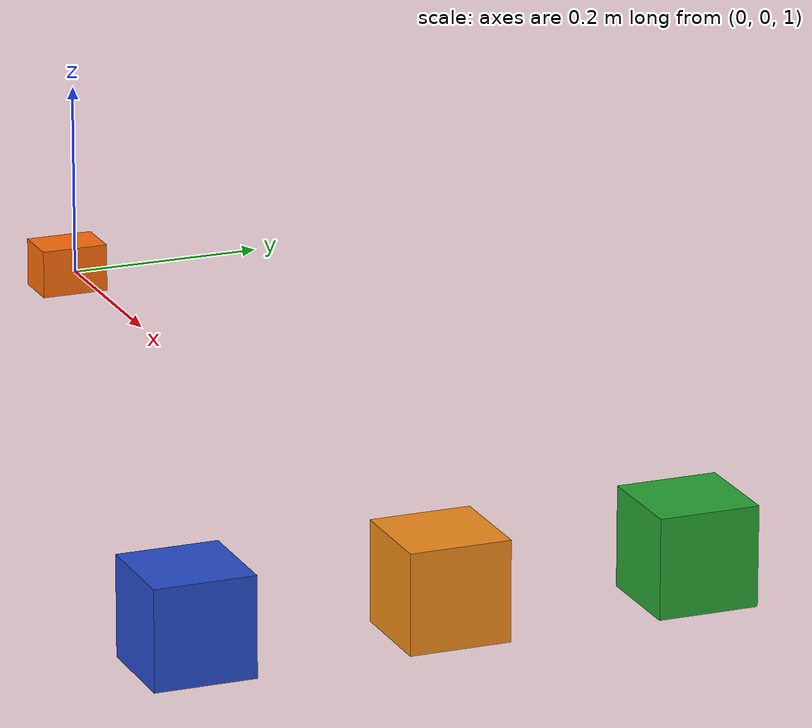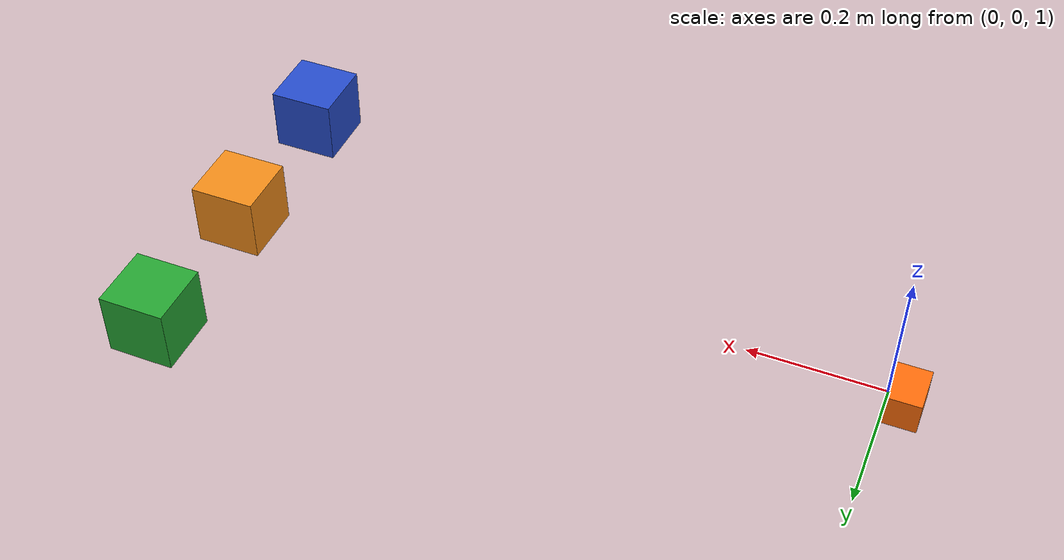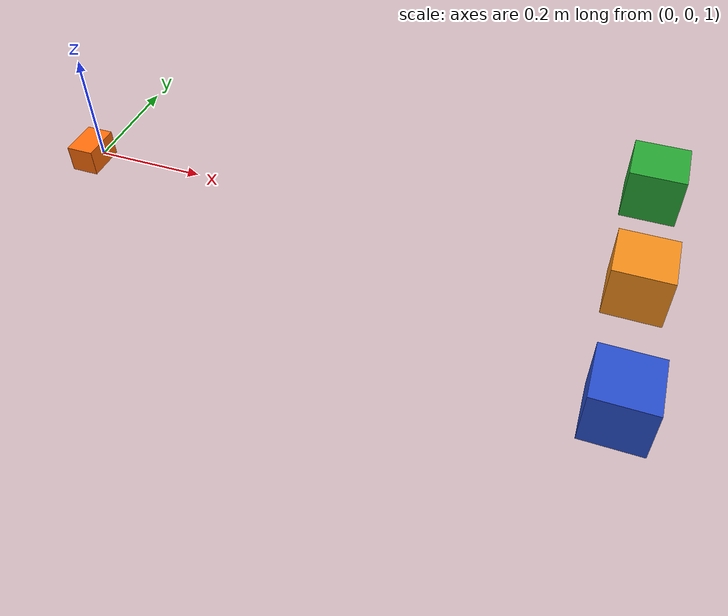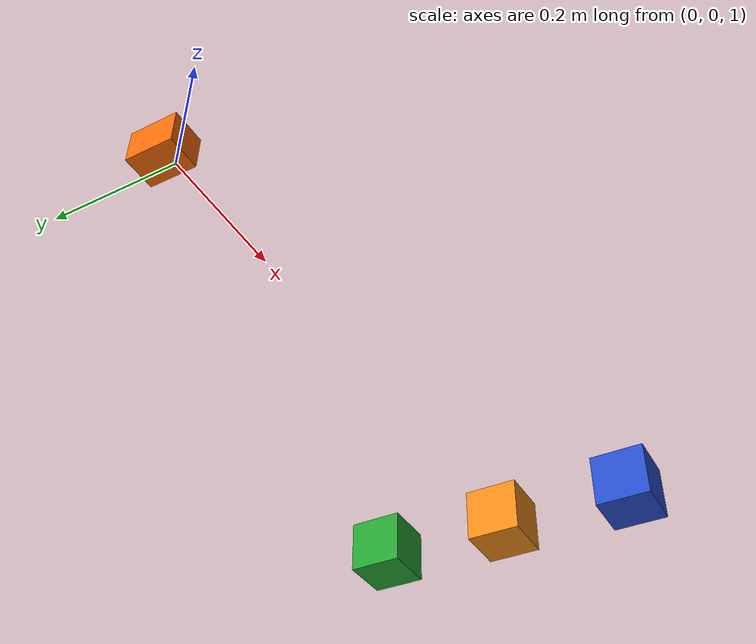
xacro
<?xml version="1.0"?>

<robot name="sensor" xmlns:xacro="http://www.ros.org/wiki/xacro">
<!-- camera -->

  <xacro:include filename="$(find sensor_sim_gazebo)/urdf/sensor.xacro"/>

<gazebo reference="sensor_link">
    <sensor type="multicamera" name="stereo_camera">
      <update_rate>30.0</update_rate>
      <camera name="left">
        <pose>0 0.035 0 0 0 0</pose>
        <horizontal_fov>1.3962634</horizontal_fov>
        <image>
          <width>800</width>
          <height>800</height>
          <format>R8G8B8</format>
        </image>
        <clip>
          <near>0.02</near>
          <far>300</far>
        </clip>
        <noise>
          <type>gaussian</type>
          <mean>0.0</mean>
          <stddev>0.007</stddev>
        </noise>
      </camera>
      <camera name="right">
        <pose>0 -0.035 0 0 0 0</pose>
        <horizontal_fov>1.3962634</horizontal_fov>
        <image>
          <width>800</width>
          <height>800</height>
          <format>R8G8B8</format>
        </image>
        <clip>
          <near>0.02</near>
          <far>300</far>
        </clip>
        <noise>
          <type>gaussian</type>
          <mean>0.0</mean>
          <stddev>0.007</stddev>
        </noise>
      </camera>
      <plugin name="stereo_camera_controller" filename="libgazebo_ros_multicamera.so">
        <alwaysOn>true</alwaysOn>
        <updateRate>0.0</updateRate>
        <cameraName>stereo/camera</cameraName>
        <imageTopicName>image_raw</imageTopicName>
        <cameraInfoTopicName>camera_info</cameraInfoTopicName>
        <frameName>sensor_link</frameName>

        <hackBaseline>0.07</hackBaseline>
        <distortionK1>0.0</distortionK1>
        <distortionK2>0.0</distortionK2>
        <distortionK3>0.0</distortionK3>
        <distortionT1>0.0</distortionT1>
        <distortionT2>0.0</distortionT2>
        <publishTf>true</publishTf>
      </plugin>
    </sensor>
  </gazebo>

</robot>

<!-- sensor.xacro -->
<robot name="sensor" xmlns:xacro="http://www.ros.org/wiki/xacro">
  <xacro:property name="stereo_z" value="0.05" />
  <xacro:property name="stereo_y" value="0.07" />
  <xacro:property name="stereo_x" value="0.05" />
  <xacro:property name="object_height" value="1" />

 <!-- Used for fixing robot to Gazebo 'base_link' -->
  <link name="world"/>

 <!-- Base Link -->
  <link name="sensor_link">
    <collision>
      <origin xyz="-${stereo_z/2} 0 0" rpy="0 0 0"/>
      <geometry>
        <box size="${stereo_x} ${stereo_y} ${stereo_z}"/>
      </geometry>
    </collision>

    <visual>
      <origin xyz="-${stereo_x/2} 0 0" rpy="0 0 0"/>
      <geometry>
        <box size="${stereo_x} ${stereo_y} ${stereo_z}"/>
      </geometry>
      <material name="orange"/>
    </visual>

    <inertial>
      <origin xyz="0 0 0" rpy="0 0 0"/>
      <mass value="1"/>
      <inertia
        ixx="1.0" ixy="0.0" ixz="0.0"
        iyy="1.0" iyz="0.0"
        izz="1.0"/>
    </inertial>
  </link>

  <joint name="sensor_joint" type="fixed">
    <parent link="world"/>
    <child link="sensor_link"/>
    <origin xyz="0 0 ${object_height}" rpy="0 0 0" />
  </joint>

  <link name="object_link">
    <collision>
      <origin xyz="0 0 0" rpy="0 0 0"/>
      <geometry>
        <box size="0.1 0.1 0.1"/>
      </geometry>
    </collision>
    <visual>
      <origin xyz="0 0 0" rpy="0 0 0"/>
      <geometry>
        <box size="0.1 0.1 0.1"/>
      </geometry>
    </visual>
    <inertial>
      <origin xyz="0 0 0" rpy="0 0 0"/>
      <mass value="1"/>
      <inertia
        ixx="1.0" ixy="0.0" ixz="0.0"
        iyy="1.0" iyz="0.0"
        izz="1.0"/>
    </inertial>
  </link>

  <joint name="object_joint" type="fixed">
    <parent link="world"/>
    <child link="object_link"/>
    <origin xyz="1 0 ${object_height}" rpy="0 0 0" />
  </joint>

  <link name="object2_link">
    <collision>
      <origin xyz="0 0 0" rpy="0 0 0"/>
      <geometry>
        <sphere radius="0.05"/>
      </geometry>
    </collision>
    <visual>
      <origin xyz="0 0 0" rpy="0 0 0"/>
      <geometry>
        <box size="0.1 0.1 0.1"/>
      </geometry>
    </visual>
    <inertial>
      <origin xyz="0 0 0" rpy="0 0 0"/>
      <mass value="1"/>
      <inertia
        ixx="1.0" ixy="0.0" ixz="0.0"
        iyy="1.0" iyz="0.0"
        izz="1.0"/>
    </inertial>
  </link>

  <joint name="object2_joint" type="fixed">
    <parent link="world"/>
    <child link="object2_link"/>
    <origin xyz="1 0.25 ${object_height}" rpy="0 0 0" />
  </joint>

  <link name="object3_link">
    <collision>
      <origin xyz="0 0 0" rpy="0 0 0"/>
      <geometry>
        <box size="0.05 0.05 0.05"/>
      </geometry>
    </collision>
    <visual>
      <origin xyz="0 0 0" rpy="0 0 0"/>
      <geometry>
        <box size="0.1 0.1 0.1"/>
      </geometry>
    </visual>
    <inertial>
      <origin xyz="0 0 0" rpy="0 0 0"/>
      <mass value="1"/>
      <inertia
        ixx="1.0" ixy="0.0" ixz="0.0"
        iyy="1.0" iyz="0.0"
        izz="1.0"/>
    </inertial>
  </link>

  <joint name="object3_joint" type="fixed">
    <parent link="world"/>
    <child link="object3_link"/>
    <origin xyz="1 -0.25 ${object_height}" rpy="0 0 0" />
  </joint>

  <material name="orange">
    <color rgba="${255/255} ${108/255} ${10/255} 1.0"/>
  </material>
  <gazebo reference="object_link">
    <material>Gazebo/Orange</material>
  </gazebo>
  <gazebo reference="object2_link">
    <material>Gazebo/Green</material>
  </gazebo>
  <gazebo reference="object3_link">
    <material>Gazebo/Blue</material>
  </gazebo>
 <gazebo reference="sensor_link">
    <material>Gazebo/Black</material>
  </gazebo>

</robot>
